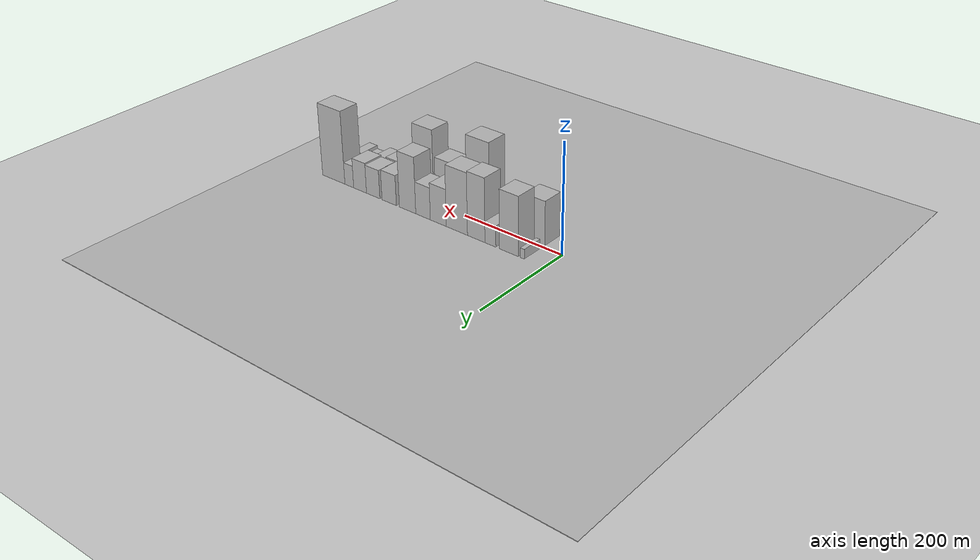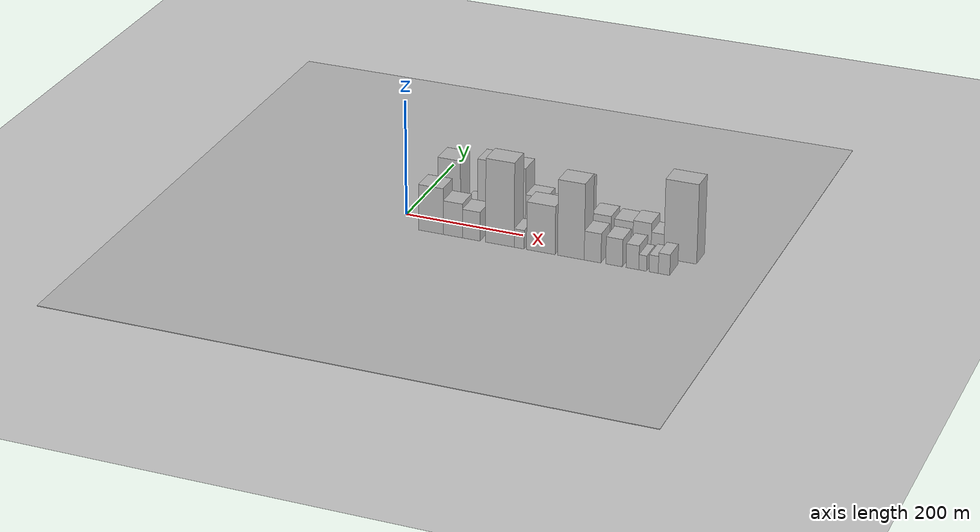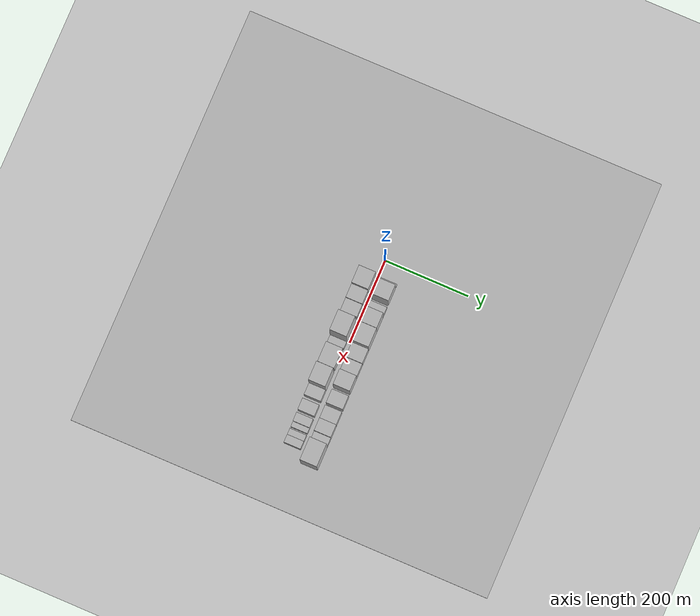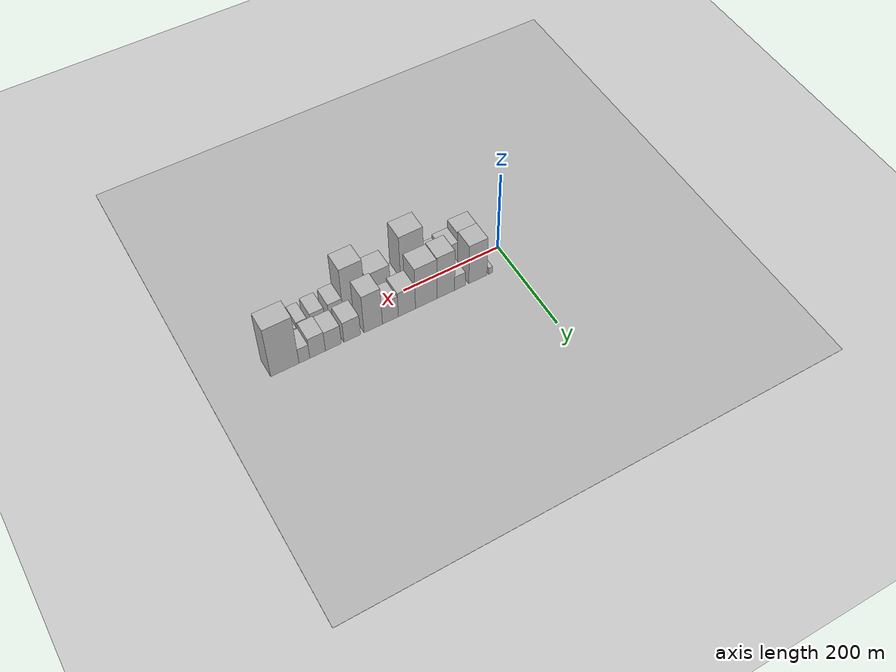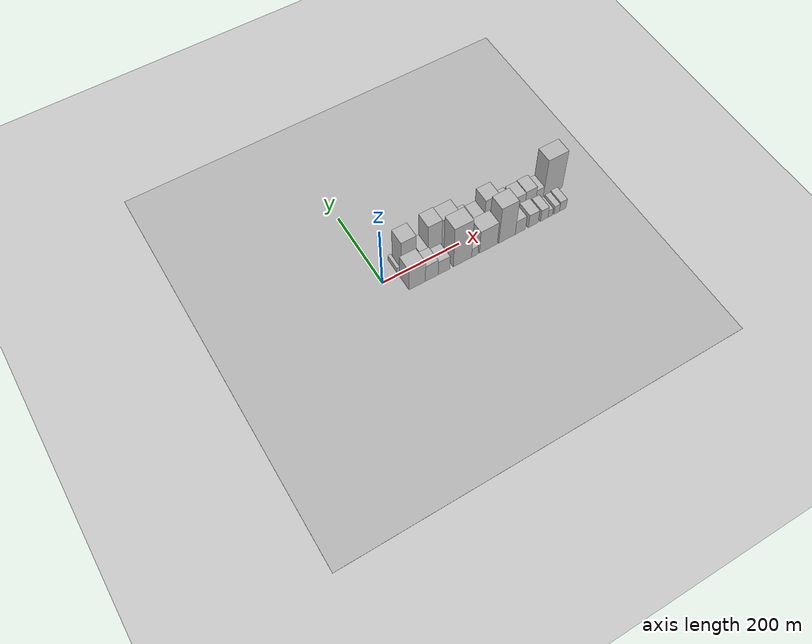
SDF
<?xml version="1.0" encoding="utf-8"?>

<sdf version="1.6">

   <world name="default">

      <gui fullscreen="0">

         <camera name="user_camera">

            <pose>-15 0 4.57585 0 0 0</pose>

            <view_controller>orbit</view_controller>

         </camera>

      </gui>

      <scene>

         <sky>

           <clouds>

             <speed>12</speed>

           </clouds>

         </sky>

         <ambient>0.4 0.4 0.4 1</ambient>

         <background>0.7 0.7 0.7 1</background>

         <shadows>1</shadows>

      </scene>

      <gravity>0 0 -9.8066</gravity>

      <magnetic_field>6e-06 2.3e-05 -4.2e-05</magnetic_field>

      <physics default="0" name="default_physics" type="ode">

         <ode>

            <solver>

               <type>quick</type>

               <iters>10</iters>

               <sor>1.0</sor>

               <use_dynamic_moi_rescaling>0</use_dynamic_moi_rescaling>

            </solver>

            <constraints>

               <cfm>0</cfm>

               <erp>0.2</erp>

               <contact_max_correcting_vel>100</contact_max_correcting_vel>

               <contact_surface_layer>0.001</contact_surface_layer>

            </constraints>

         </ode>

         <max_step_size>0.004</max_step_size>

         <real_time_factor>1</real_time_factor>

         <real_time_update_rate>250</real_time_update_rate>

      </physics>

      <light name="sun" type="directional">

         <cast_shadows>1</cast_shadows>

         <pose>0 0 10 0 0 0</pose>

         <diffuse>0.8 0.8 0.8 1</diffuse>

         <specular>0.2 0.2 0.2 1</specular>

         <attenuation>

            <range>1000</range>

            <constant>0.9</constant>

            <linear>0.01</linear>

            <quadratic>0.001</quadratic>

         </attenuation>

         <direction>-0.5 0.1 -0.9</direction>

      </light>

      <include>

         <name>ground_plane_1</name>

         <uri>model://HANNAS_ground_plane</uri>

         <pose>0 0 0  0 0 0</pose>

      </include>

      <include>

         <name>ground_plane_2</name>

         <uri>model://HANNAS_ground_plane</uri>

         <pose>100 0 0  0 0 0</pose>

      </include>

      <model name="building_1">

         <static>1</static>

         <pose frame="">43.9411 26.0000 0 0.000000 0.000000 1.570796</pose>

         <link name="link">

            <pose frame="">0 0 9.00 0 0 0</pose>

            <collision name="collision">

               <geometry>

                  <box>

                     <size>40.0000 7.8822 18.0000</size>

                  </box>

               </geometry>

               <max_contacts>10</max_contacts>

               <surface>

                  <contact>

                     <ode/>

                  </contact>

                  <bounce/>

                  <friction>

                     <torsional>

                        <ode/>

                     </torsional>

                     <ode/>

                  </friction>

               </surface>

            </collision>

            <visual name="visual">

               <cast_shadows>0</cast_shadows>

               <geometry>

                  <box>

                     <size>40.0000 7.8822 18.0000</size>

                  </box>

               </geometry>

               <material>

                  <script>

                     <uri>model://HANNAS_wall/materials/scripts</uri>

                     <uri>model://HANNAS_wall/materials/textures</uri>

                     <name>vrc/HANNAS_wall</name>

                  </script>

               </material>

            </visual>

            <self_collide>0</self_collide>

            <enable_wind>0</enable_wind>

            <kinematic>0</kinematic>

         </link>

      </model>

      <model name="building_2">

         <static>1</static>

         <pose frame="">71.2316 26.0000 0 0.000000 0.000000 1.570796</pose>

         <link name="link">

            <pose frame="">0 0 54.00 0 0 0</pose>

            <collision name="collision">

               <geometry>

                  <box>

                     <size>40.0000 38.6990 108.0000</size>

                  </box>

               </geometry>

               <max_contacts>10</max_contacts>

               <surface>

                  <contact>

                     <ode/>

                  </contact>

                  <bounce/>

                  <friction>

                     <torsional>

                        <ode/>

                     </torsional>

                     <ode/>

                  </friction>

               </surface>

            </collision>

            <visual name="visual">

               <cast_shadows>0</cast_shadows>

               <geometry>

                  <box>

                     <size>40.0000 38.6990 108.0000</size>

                  </box>

               </geometry>

               <material>

                  <script>

                     <uri>model://HANNAS_wall/materials/scripts</uri>

                     <uri>model://HANNAS_wall/materials/textures</uri>

                     <name>vrc/HANNAS_wall</name>

                  </script>

               </material>

            </visual>

            <self_collide>0</self_collide>

            <enable_wind>0</enable_wind>

            <kinematic>0</kinematic>

         </link>

      </model>

      <model name="building_3">

         <static>1</static>

         <pose frame="">108.9111 26.0000 0 0.000000 0.000000 1.570796</pose>

         <link name="link">

            <pose frame="">0 0 19.50 0 0 0</pose>

            <collision name="collision">

               <geometry>

                  <box>

                     <size>40.0000 22.6600 39.0000</size>

                  </box>

               </geometry>

               <max_contacts>10</max_contacts>

               <surface>

                  <contact>

                     <ode/>

                  </contact>

                  <bounce/>

                  <friction>

                     <torsional>

                        <ode/>

                     </torsional>

                     <ode/>

                  </friction>

               </surface>

            </collision>

            <visual name="visual">

               <cast_shadows>0</cast_shadows>

               <geometry>

                  <box>

                     <size>40.0000 22.6600 39.0000</size>

                  </box>

               </geometry>

               <material>

                  <script>

                     <uri>model://HANNAS_wall/materials/scripts</uri>

                     <uri>model://HANNAS_wall/materials/textures</uri>

                     <name>vrc/HANNAS_wall</name>

                  </script>

               </material>

            </visual>

            <self_collide>0</self_collide>

            <enable_wind>0</enable_wind>

            <kinematic>0</kinematic>

         </link>

      </model>

      <model name="building_4">

         <static>1</static>

         <pose frame="">138.4646 26.0000 0 0.000000 0.000000 1.570796</pose>

         <link name="link">

            <pose frame="">0 0 58.50 0 0 0</pose>

            <collision name="collision">

               <geometry>

                  <box>

                     <size>40.0000 36.4471 117.0000</size>

                  </box>

               </geometry>

               <max_contacts>10</max_contacts>

               <surface>

                  <contact>

                     <ode/>

                  </contact>

                  <bounce/>

                  <friction>

                     <torsional>

                        <ode/>

                     </torsional>

                     <ode/>

                  </friction>

               </surface>

            </collision>

            <visual name="visual">

               <cast_shadows>0</cast_shadows>

               <geometry>

                  <box>

                     <size>40.0000 36.4471 117.0000</size>

                  </box>

               </geometry>

               <material>

                  <script>

                     <uri>model://HANNAS_wall/materials/scripts</uri>

                     <uri>model://HANNAS_wall/materials/textures</uri>

                     <name>vrc/HANNAS_wall</name>

                  </script>

               </material>

            </visual>

            <self_collide>0</self_collide>

            <enable_wind>0</enable_wind>

            <kinematic>0</kinematic>

         </link>

      </model>

      <model name="building_5">

         <static>1</static>

         <pose frame="">179.1929 26.0000 0 0.000000 0.000000 1.570796</pose>

         <link name="link">

            <pose frame="">0 0 57.00 0 0 0</pose>

            <collision name="collision">

               <geometry>

                  <box>

                     <size>40.0000 45.0095 114.0000</size>

                  </box>

               </geometry>

               <max_contacts>10</max_contacts>

               <surface>

                  <contact>

                     <ode/>

                  </contact>

                  <bounce/>

                  <friction>

                     <torsional>

                        <ode/>

                     </torsional>

                     <ode/>

                  </friction>

               </surface>

            </collision>

            <visual name="visual">

               <cast_shadows>0</cast_shadows>

               <geometry>

                  <box>

                     <size>40.0000 45.0095 114.0000</size>

                  </box>

               </geometry>

               <material>

                  <script>

                     <uri>model://HANNAS_wall/materials/scripts</uri>

                     <uri>model://HANNAS_wall/materials/textures</uri>

                     <name>vrc/HANNAS_wall</name>

                  </script>

               </material>

            </visual>

            <self_collide>0</self_collide>

            <enable_wind>0</enable_wind>

            <kinematic>0</kinematic>

         </link>

      </model>

      <model name="building_6">

         <static>1</static>

         <pose frame="">219.1872 26.0000 0 0.000000 0.000000 1.570796</pose>

         <link name="link">

            <pose frame="">0 0 34.50 0 0 0</pose>

            <collision name="collision">

               <geometry>

                  <box>

                     <size>40.0000 34.9791 69.0000</size>

                  </box>

               </geometry>

               <max_contacts>10</max_contacts>

               <surface>

                  <contact>

                     <ode/>

                  </contact>

                  <bounce/>

                  <friction>

                     <torsional>

                        <ode/>

                     </torsional>

                     <ode/>

                  </friction>

               </surface>

            </collision>

            <visual name="visual">

               <cast_shadows>0</cast_shadows>

               <geometry>

                  <box>

                     <size>40.0000 34.9791 69.0000</size>

                  </box>

               </geometry>

               <material>

                  <script>

                     <uri>model://HANNAS_wall/materials/scripts</uri>

                     <uri>model://HANNAS_wall/materials/textures</uri>

                     <name>vrc/HANNAS_wall</name>

                  </script>

               </material>

            </visual>

            <self_collide>0</self_collide>

            <enable_wind>0</enable_wind>

            <kinematic>0</kinematic>

         </link>

      </model>

      <model name="building_7">

         <static>1</static>

         <pose frame="">252.8555 26.0000 0 0.000000 0.000000 1.570796</pose>

         <link name="link">

            <pose frame="">0 0 30.00 0 0 0</pose>

            <collision name="collision">

               <geometry>

                  <box>

                     <size>40.0000 32.3575 60.0000</size>

                  </box>

               </geometry>

               <max_contacts>10</max_contacts>

               <surface>

                  <contact>

                     <ode/>

                  </contact>

                  <bounce/>

                  <friction>

                     <torsional>

                        <ode/>

                     </torsional>

                     <ode/>

                  </friction>

               </surface>

            </collision>

            <visual name="visual">

               <cast_shadows>0</cast_shadows>

               <geometry>

                  <box>

                     <size>40.0000 32.3575 60.0000</size>

                  </box>

               </geometry>

               <material>

                  <script>

                     <uri>model://HANNAS_wall/materials/scripts</uri>

                     <uri>model://HANNAS_wall/materials/textures</uri>

                     <name>vrc/HANNAS_wall</name>

                  </script>

               </material>

            </visual>

            <self_collide>0</self_collide>

            <enable_wind>0</enable_wind>

            <kinematic>0</kinematic>

         </link>

      </model>

      <model name="building_8">

         <static>1</static>

         <pose frame="">287.4369 26.0000 0 0.000000 0.000000 1.570796</pose>

         <link name="link">

            <pose frame="">0 0 52.50 0 0 0</pose>

            <collision name="collision">

               <geometry>

                  <box>

                     <size>40.0000 36.8053 105.0000</size>

                  </box>

               </geometry>

               <max_contacts>10</max_contacts>

               <surface>

                  <contact>

                     <ode/>

                  </contact>

                  <bounce/>

                  <friction>

                     <torsional>

                        <ode/>

                     </torsional>

                     <ode/>

                  </friction>

               </surface>

            </collision>

            <visual name="visual">

               <cast_shadows>0</cast_shadows>

               <geometry>

                  <box>

                     <size>40.0000 36.8053 105.0000</size>

                  </box>

               </geometry>

               <material>

                  <script>

                     <uri>model://HANNAS_wall/materials/scripts</uri>

                     <uri>model://HANNAS_wall/materials/textures</uri>

                     <name>vrc/HANNAS_wall</name>

                  </script>

               </material>

            </visual>

            <self_collide>0</self_collide>

            <enable_wind>0</enable_wind>

            <kinematic>0</kinematic>

         </link>

      </model>

      <model name="building_9">

         <static>1</static>

         <pose frame="">329.3068 26.0000 0 0.000000 0.000000 1.570796</pose>

         <link name="link">

            <pose frame="">0 0 28.50 0 0 0</pose>

            <collision name="collision">

               <geometry>

                  <box>

                     <size>40.0000 32.9345 57.0000</size>

                  </box>

               </geometry>

               <max_contacts>10</max_contacts>

               <surface>

                  <contact>

                     <ode/>

                  </contact>

                  <bounce/>

                  <friction>

                     <torsional>

                        <ode/>

                     </torsional>

                     <ode/>

                  </friction>

               </surface>

            </collision>

            <visual name="visual">

               <cast_shadows>0</cast_shadows>

               <geometry>

                  <box>

                     <size>40.0000 32.9345 57.0000</size>

                  </box>

               </geometry>

               <material>

                  <script>

                     <uri>model://HANNAS_wall/materials/scripts</uri>

                     <uri>model://HANNAS_wall/materials/textures</uri>

                     <name>vrc/HANNAS_wall</name>

                  </script>

               </material>

            </visual>

            <self_collide>0</self_collide>

            <enable_wind>0</enable_wind>

            <kinematic>0</kinematic>

         </link>

      </model>

      <model name="building_10">

         <static>1</static>

         <pose frame="">366.4222 26.0000 0 0.000000 0.000000 1.570796</pose>

         <link name="link">

            <pose frame="">0 0 27.00 0 0 0</pose>

            <collision name="collision">

               <geometry>

                  <box>

                     <size>40.0000 31.2964 54.0000</size>

                  </box>

               </geometry>

               <max_contacts>10</max_contacts>

               <surface>

                  <contact>

                     <ode/>

                  </contact>

                  <bounce/>

                  <friction>

                     <torsional>

                        <ode/>

                     </torsional>

                     <ode/>

                  </friction>

               </surface>

            </collision>

            <visual name="visual">

               <cast_shadows>0</cast_shadows>

               <geometry>

                  <box>

                     <size>40.0000 31.2964 54.0000</size>

                  </box>

               </geometry>

               <material>

                  <script>

                     <uri>model://HANNAS_wall/materials/scripts</uri>

                     <uri>model://HANNAS_wall/materials/textures</uri>

                     <name>vrc/HANNAS_wall</name>

                  </script>

               </material>

            </visual>

            <self_collide>0</self_collide>

            <enable_wind>0</enable_wind>

            <kinematic>0</kinematic>

         </link>

      </model>

      <model name="building_11">

         <static>1</static>

         <pose frame="">397.2394 26.0000 0 0.000000 0.000000 1.570796</pose>

         <link name="link">

            <pose frame="">0 0 28.50 0 0 0</pose>

            <collision name="collision">

               <geometry>

                  <box>

                     <size>40.0000 30.3379 57.0000</size>

                  </box>

               </geometry>

               <max_contacts>10</max_contacts>

               <surface>

                  <contact>

                     <ode/>

                  </contact>

                  <bounce/>

                  <friction>

                     <torsional>

                        <ode/>

                     </torsional>

                     <ode/>

                  </friction>

               </surface>

            </collision>

            <visual name="visual">

               <cast_shadows>0</cast_shadows>

               <geometry>

                  <box>

                     <size>40.0000 30.3379 57.0000</size>

                  </box>

               </geometry>

               <material>

                  <script>

                     <uri>model://HANNAS_wall/materials/scripts</uri>

                     <uri>model://HANNAS_wall/materials/textures</uri>

                     <name>vrc/HANNAS_wall</name>

                  </script>

               </material>

            </visual>

            <self_collide>0</self_collide>

            <enable_wind>0</enable_wind>

            <kinematic>0</kinematic>

         </link>

      </model>

      <model name="building_12">

         <static>1</static>

         <pose frame="">422.9130 26.0000 0 0.000000 0.000000 1.570796</pose>

         <link name="link">

            <pose frame="">0 0 21.00 0 0 0</pose>

            <collision name="collision">

               <geometry>

                  <box>

                     <size>40.0000 21.0094 42.0000</size>

                  </box>

               </geometry>

               <max_contacts>10</max_contacts>

               <surface>

                  <contact>

                     <ode/>

                  </contact>

                  <bounce/>

                  <friction>

                     <torsional>

                        <ode/>

                     </torsional>

                     <ode/>

                  </friction>

               </surface>

            </collision>

            <visual name="visual">

               <cast_shadows>0</cast_shadows>

               <geometry>

                  <box>

                     <size>40.0000 21.0094 42.0000</size>

                  </box>

               </geometry>

               <material>

                  <script>

                     <uri>model://HANNAS_wall/materials/scripts</uri>

                     <uri>model://HANNAS_wall/materials/textures</uri>

                     <name>vrc/HANNAS_wall</name>

                  </script>

               </material>

            </visual>

            <self_collide>0</self_collide>

            <enable_wind>0</enable_wind>

            <kinematic>0</kinematic>

         </link>

      </model>

      <model name="building_13">

         <static>1</static>

         <pose frame="">460.5681 26.0000 0 0.000000 0.000000 1.570796</pose>

         <link name="link">

            <pose frame="">0 0 69.00 0 0 0</pose>

            <collision name="collision">

               <geometry>

                  <box>

                     <size>40.0000 54.3009 138.0000</size>

                  </box>

               </geometry>

               <max_contacts>10</max_contacts>

               <surface>

                  <contact>

                     <ode/>

                  </contact>

                  <bounce/>

                  <friction>

                     <torsional>

                        <ode/>

                     </torsional>

                     <ode/>

                  </friction>

               </surface>

            </collision>

            <visual name="visual">

               <cast_shadows>0</cast_shadows>

               <geometry>

                  <box>

                     <size>40.0000 54.3009 138.0000</size>

                  </box>

               </geometry>

               <material>

                  <script>

                     <uri>model://HANNAS_wall/materials/scripts</uri>

                     <uri>model://HANNAS_wall/materials/textures</uri>

                     <name>vrc/HANNAS_wall</name>

                  </script>

               </material>

            </visual>

            <self_collide>0</self_collide>

            <enable_wind>0</enable_wind>

            <kinematic>0</kinematic>

         </link>

      </model>

      <model name="building_14">

         <static>1</static>

         <pose frame="">60.9795 -26.0000 0 0.000000 0.000000 1.570796</pose>

         <link name="link">

            <pose frame="">0 0 40.50 0 0 0</pose>

            <collision name="collision">

               <geometry>

                  <box>

                     <size>40.0000 41.9589 81.0000</size>

                  </box>

               </geometry>

               <max_contacts>10</max_contacts>

               <surface>

                  <contact>

                     <ode/>

                  </contact>

                  <bounce/>

                  <friction>

                     <torsional>

                        <ode/>

                     </torsional>

                     <ode/>

                  </friction>

               </surface>

            </collision>

            <visual name="visual">

               <cast_shadows>0</cast_shadows>

               <geometry>

                  <box>

                     <size>40.0000 41.9589 81.0000</size>

                  </box>

               </geometry>

               <material>

                  <script>

                     <uri>model://HANNAS_wall/materials/scripts</uri>

                     <uri>model://HANNAS_wall/materials/textures</uri>

                     <name>vrc/HANNAS_wall</name>

                  </script>

               </material>

            </visual>

            <self_collide>0</self_collide>

            <enable_wind>0</enable_wind>

            <kinematic>0</kinematic>

         </link>

      </model>

      <model name="building_15">

         <static>1</static>

         <pose frame="">98.3897 -26.0000 0 0.000000 0.000000 1.570796</pose>

         <link name="link">

            <pose frame="">0 0 30.00 0 0 0</pose>

            <collision name="collision">

               <geometry>

                  <box>

                     <size>40.0000 32.8616 60.0000</size>

                  </box>

               </geometry>

               <max_contacts>10</max_contacts>

               <surface>

                  <contact>

                     <ode/>

                  </contact>

                  <bounce/>

                  <friction>

                     <torsional>

                        <ode/>

                     </torsional>

                     <ode/>

                  </friction>

               </surface>

            </collision>

            <visual name="visual">

               <cast_shadows>0</cast_shadows>

               <geometry>

                  <box>

                     <size>40.0000 32.8616 60.0000</size>

                  </box>

               </geometry>

               <material>

                  <script>

                     <uri>model://HANNAS_wall/materials/scripts</uri>

                     <uri>model://HANNAS_wall/materials/textures</uri>

                     <name>vrc/HANNAS_wall</name>

                  </script>

               </material>

            </visual>

            <self_collide>0</self_collide>

            <enable_wind>0</enable_wind>

            <kinematic>0</kinematic>

         </link>

      </model>

      <model name="building_16">

         <static>1</static>

         <pose frame="">130.0673 -26.0000 0 0.000000 0.000000 1.570796</pose>

         <link name="link">

            <pose frame="">0 0 25.50 0 0 0</pose>

            <collision name="collision">

               <geometry>

                  <box>

                     <size>40.0000 30.4935 51.0000</size>

                  </box>

               </geometry>

               <max_contacts>10</max_contacts>

               <surface>

                  <contact>

                     <ode/>

                  </contact>

                  <bounce/>

                  <friction>

                     <torsional>

                        <ode/>

                     </torsional>

                     <ode/>

                  </friction>

               </surface>

            </collision>

            <visual name="visual">

               <cast_shadows>0</cast_shadows>

               <geometry>

                  <box>

                     <size>40.0000 30.4935 51.0000</size>

                  </box>

               </geometry>

               <material>

                  <script>

                     <uri>model://HANNAS_wall/materials/scripts</uri>

                     <uri>model://HANNAS_wall/materials/textures</uri>

                     <name>vrc/HANNAS_wall</name>

                  </script>

               </material>

            </visual>

            <self_collide>0</self_collide>

            <enable_wind>0</enable_wind>

            <kinematic>0</kinematic>

         </link>

      </model>

      <model name="building_17">

         <static>1</static>

         <pose frame="">178.4989 -26.0000 0 0.000000 0.000000 1.570796</pose>

         <link name="link">

            <pose frame="">0 0 73.50 0 0 0</pose>

            <collision name="collision">

               <geometry>

                  <box>

                     <size>40.0000 48.3698 147.0000</size>

                  </box>

               </geometry>

               <max_contacts>10</max_contacts>

               <surface>

                  <contact>

                     <ode/>

                  </contact>

                  <bounce/>

                  <friction>

                     <torsional>

                        <ode/>

                     </torsional>

                     <ode/>

                  </friction>

               </surface>

            </collision>

            <visual name="visual">

               <cast_shadows>0</cast_shadows>

               <geometry>

                  <box>

                     <size>40.0000 48.3698 147.0000</size>

                  </box>

               </geometry>

               <material>

                  <script>

                     <uri>model://HANNAS_wall/materials/scripts</uri>

                     <uri>model://HANNAS_wall/materials/textures</uri>

                     <name>vrc/HANNAS_wall</name>

                  </script>

               </material>

            </visual>

            <self_collide>0</self_collide>

            <enable_wind>0</enable_wind>

            <kinematic>0</kinematic>

         </link>

      </model>

      <model name="building_18">

         <static>1</static>

         <pose frame="">211.1739 -26.0000 0 0.000000 0.000000 1.570796</pose>

         <link name="link">

            <pose frame="">0 0 16.50 0 0 0</pose>

            <collision name="collision">

               <geometry>

                  <box>

                     <size>40.0000 16.9802 33.0000</size>

                  </box>

               </geometry>

               <max_contacts>10</max_contacts>

               <surface>

                  <contact>

                     <ode/>

                  </contact>

                  <bounce/>

                  <friction>

                     <torsional>

                        <ode/>

                     </torsional>

                     <ode/>

                  </friction>

               </surface>

            </collision>

            <visual name="visual">

               <cast_shadows>0</cast_shadows>

               <geometry>

                  <box>

                     <size>40.0000 16.9802 33.0000</size>

                  </box>

               </geometry>

               <material>

                  <script>

                     <uri>model://HANNAS_wall/materials/scripts</uri>

                     <uri>model://HANNAS_wall/materials/textures</uri>

                     <name>vrc/HANNAS_wall</name>

                  </script>

               </material>

            </visual>

            <self_collide>0</self_collide>

            <enable_wind>0</enable_wind>

            <kinematic>0</kinematic>

         </link>

      </model>

      <model name="building_19">

         <static>1</static>

         <pose frame="">247.5846 -26.0000 0 0.000000 0.000000 1.570796</pose>

         <link name="link">

            <pose frame="">0 0 42.00 0 0 0</pose>

            <collision name="collision">

               <geometry>

                  <box>

                     <size>40.0000 47.8412 84.0000</size>

                  </box>

               </geometry>

               <max_contacts>10</max_contacts>

               <surface>

                  <contact>

                     <ode/>

                  </contact>

                  <bounce/>

                  <friction>

                     <torsional>

                        <ode/>

                     </torsional>

                     <ode/>

                  </friction>

               </surface>

            </collision>

            <visual name="visual">

               <cast_shadows>0</cast_shadows>

               <geometry>

                  <box>

                     <size>40.0000 47.8412 84.0000</size>

                  </box>

               </geometry>

               <material>

                  <script>

                     <uri>model://HANNAS_wall/materials/scripts</uri>

                     <uri>model://HANNAS_wall/materials/textures</uri>

                     <name>vrc/HANNAS_wall</name>

                  </script>

               </material>

            </visual>

            <self_collide>0</self_collide>

            <enable_wind>0</enable_wind>

            <kinematic>0</kinematic>

         </link>

      </model>

      <model name="building_20">

         <static>1</static>

         <pose frame="">297.8035 -26.0000 0 0.000000 0.000000 1.570796</pose>

         <link name="link">

            <pose frame="">0 0 66.00 0 0 0</pose>

            <collision name="collision">

               <geometry>

                  <box>

                     <size>40.0000 44.5967 132.0000</size>

                  </box>

               </geometry>

               <max_contacts>10</max_contacts>

               <surface>

                  <contact>

                     <ode/>

                  </contact>

                  <bounce/>

                  <friction>

                     <torsional>

                        <ode/>

                     </torsional>

                     <ode/>

                  </friction>

               </surface>

            </collision>

            <visual name="visual">

               <cast_shadows>0</cast_shadows>

               <geometry>

                  <box>

                     <size>40.0000 44.5967 132.0000</size>

                  </box>

               </geometry>

               <material>

                  <script>

                     <uri>model://HANNAS_wall/materials/scripts</uri>

                     <uri>model://HANNAS_wall/materials/textures</uri>

                     <name>vrc/HANNAS_wall</name>

                  </script>

               </material>

            </visual>

            <self_collide>0</self_collide>

            <enable_wind>0</enable_wind>

            <kinematic>0</kinematic>

         </link>

      </model>

      <model name="building_21">

         <static>1</static>

         <pose frame="">334.0438 -26.0000 0 0.000000 0.000000 1.570796</pose>

         <link name="link">

            <pose frame="">0 0 25.50 0 0 0</pose>

            <collision name="collision">

               <geometry>

                  <box>

                     <size>40.0000 27.8838 51.0000</size>

                  </box>

               </geometry>

               <max_contacts>10</max_contacts>

               <surface>

                  <contact>

                     <ode/>

                  </contact>

                  <bounce/>

                  <friction>

                     <torsional>

                        <ode/>

                     </torsional>

                     <ode/>

                  </friction>

               </surface>

            </collision>

            <visual name="visual">

               <cast_shadows>0</cast_shadows>

               <geometry>

                  <box>

                     <size>40.0000 27.8838 51.0000</size>

                  </box>

               </geometry>

               <material>

                  <script>

                     <uri>model://HANNAS_wall/materials/scripts</uri>

                     <uri>model://HANNAS_wall/materials/textures</uri>

                     <name>vrc/HANNAS_wall</name>

                  </script>

               </material>

            </visual>

            <self_collide>0</self_collide>

            <enable_wind>0</enable_wind>

            <kinematic>0</kinematic>

         </link>

      </model>

      <model name="building_22">

         <static>1</static>

         <pose frame="">369.7106 -26.0000 0 0.000000 0.000000 1.570796</pose>

         <link name="link">

            <pose frame="">0 0 24.00 0 0 0</pose>

            <collision name="collision">

               <geometry>

                  <box>

                     <size>40.0000 27.4498 48.0000</size>

                  </box>

               </geometry>

               <max_contacts>10</max_contacts>

               <surface>

                  <contact>

                     <ode/>

                  </contact>

                  <bounce/>

                  <friction>

                     <torsional>

                        <ode/>

                     </torsional>

                     <ode/>

                  </friction>

               </surface>

            </collision>

            <visual name="visual">

               <cast_shadows>0</cast_shadows>

               <geometry>

                  <box>

                     <size>40.0000 27.4498 48.0000</size>

                  </box>

               </geometry>

               <material>

                  <script>

                     <uri>model://HANNAS_wall/materials/scripts</uri>

                     <uri>model://HANNAS_wall/materials/textures</uri>

                     <name>vrc/HANNAS_wall</name>

                  </script>

               </material>

            </visual>

            <self_collide>0</self_collide>

            <enable_wind>0</enable_wind>

            <kinematic>0</kinematic>

         </link>

      </model>

      <model name="building_23">

         <static>1</static>

         <pose frame="">399.9405 -26.0000 0 0.000000 0.000000 1.570796</pose>

         <link name="link">

            <pose frame="">0 0 21.00 0 0 0</pose>

            <collision name="collision">

               <geometry>

                  <box>

                     <size>40.0000 21.0100 42.0000</size>

                  </box>

               </geometry>

               <max_contacts>10</max_contacts>

               <surface>

                  <contact>

                     <ode/>

                  </contact>

                  <bounce/>

                  <friction>

                     <torsional>

                        <ode/>

                     </torsional>

                     <ode/>

                  </friction>

               </surface>

            </collision>

            <visual name="visual">

               <cast_shadows>0</cast_shadows>

               <geometry>

                  <box>

                     <size>40.0000 21.0100 42.0000</size>

                  </box>

               </geometry>

               <material>

                  <script>

                     <uri>model://HANNAS_wall/materials/scripts</uri>

                     <uri>model://HANNAS_wall/materials/textures</uri>

                     <name>vrc/HANNAS_wall</name>

                  </script>

               </material>

            </visual>

            <self_collide>0</self_collide>

            <enable_wind>0</enable_wind>

            <kinematic>0</kinematic>

         </link>

      </model>

      <model name="building_24">

         <static>1</static>

         <pose frame="">416.8328 -26.0000 0 0.000000 0.000000 1.570796</pose>

         <link name="link">

            <pose frame="">0 0 13.50 0 0 0</pose>

            <collision name="collision">

               <geometry>

                  <box>

                     <size>40.0000 12.7745 27.0000</size>

                  </box>

               </geometry>

               <max_contacts>10</max_contacts>

               <surface>

                  <contact>

                     <ode/>

                  </contact>

                  <bounce/>

                  <friction>

                     <torsional>

                        <ode/>

                     </torsional>

                     <ode/>

                  </friction>

               </surface>

            </collision>

            <visual name="visual">

               <cast_shadows>0</cast_shadows>

               <geometry>

                  <box>

                     <size>40.0000 12.7745 27.0000</size>

                  </box>

               </geometry>

               <material>

                  <script>

                     <uri>model://HANNAS_wall/materials/scripts</uri>

                     <uri>model://HANNAS_wall/materials/textures</uri>

                     <name>vrc/HANNAS_wall</name>

                  </script>

               </material>

            </visual>

            <self_collide>0</self_collide>

            <enable_wind>0</enable_wind>

            <kinematic>0</kinematic>

         </link>

      </model>

      <model name="building_25">

         <static>1</static>

         <pose frame="">434.7739 -26.0000 0 0.000000 0.000000 1.570796</pose>

         <link name="link">

            <pose frame="">0 0 15.00 0 0 0</pose>

            <collision name="collision">

               <geometry>

                  <box>

                     <size>40.0000 15.1077 30.0000</size>

                  </box>

               </geometry>

               <max_contacts>10</max_contacts>

               <surface>

                  <contact>

                     <ode/>

                  </contact>

                  <bounce/>

                  <friction>

                     <torsional>

                        <ode/>

                     </torsional>

                     <ode/>

                  </friction>

               </surface>

            </collision>

            <visual name="visual">

               <cast_shadows>0</cast_shadows>

               <geometry>

                  <box>

                     <size>40.0000 15.1077 30.0000</size>

                  </box>

               </geometry>

               <material>

                  <script>

                     <uri>model://HANNAS_wall/materials/scripts</uri>

                     <uri>model://HANNAS_wall/materials/textures</uri>

                     <name>vrc/HANNAS_wall</name>

                  </script>

               </material>

            </visual>

            <self_collide>0</self_collide>

            <enable_wind>0</enable_wind>

            <kinematic>0</kinematic>

         </link>

      </model>

      <model name="building_26">

         <static>1</static>

         <pose frame="">451.7394 -26.0000 0 0.000000 0.000000 1.570796</pose>

         <link name="link">

            <pose frame="">0 0 18.00 0 0 0</pose>

            <collision name="collision">

               <geometry>

                  <box>

                     <size>40.0000 18.8233 36.0000</size>

                  </box>

               </geometry>

               <max_contacts>10</max_contacts>

               <surface>

                  <contact>

                     <ode/>

                  </contact>

                  <bounce/>

                  <friction>

                     <torsional>

                        <ode/>

                     </torsional>

                     <ode/>

                  </friction>

               </surface>

            </collision>

            <visual name="visual">

               <cast_shadows>0</cast_shadows>

               <geometry>

                  <box>

                     <size>40.0000 18.8233 36.0000</size>

                  </box>

               </geometry>

               <material>

                  <script>

                     <uri>model://HANNAS_wall/materials/scripts</uri>

                     <uri>model://HANNAS_wall/materials/textures</uri>

                     <name>vrc/HANNAS_wall</name>

                  </script>

               </material>

            </visual>

            <self_collide>0</self_collide>

            <enable_wind>0</enable_wind>

            <kinematic>0</kinematic>

         </link>

      </model>

   </world>

</sdf>

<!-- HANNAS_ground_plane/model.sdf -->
<sdf version="1.4">
<model name="HANNAS_ground_plane">
  <static>true</static>
    <link name="link">
      <collision name="collision">
        <geometry>
          <plane>
            <normal>0 0 1</normal>
            <size>1000 1000</size>
          </plane>
        </geometry>
        <surface>
          <friction>
            <ode>
              <mu>100</mu>
              <mu2>50</mu2>
            </ode>
          </friction>
        </surface>
      </collision>
      <visual name="visual">
        <cast_shadows>false</cast_shadows>
        <geometry>
          <plane>
            <normal>0 0 1</normal>
            <size>1000 1000</size>
          </plane>
        </geometry>
        <material>
          <script>
            <uri>model://HANNAS_ground_plane/materials/scripts/HANNAS_ground_plane.material</uri>
	    <uri>model://HANNAS_ground_plane/materials/textures</uri>
            <name>HANNASGroundPlane/Image</name>
          </script>
        </material>
      </visual>
    </link>
  </model>
</sdf>
